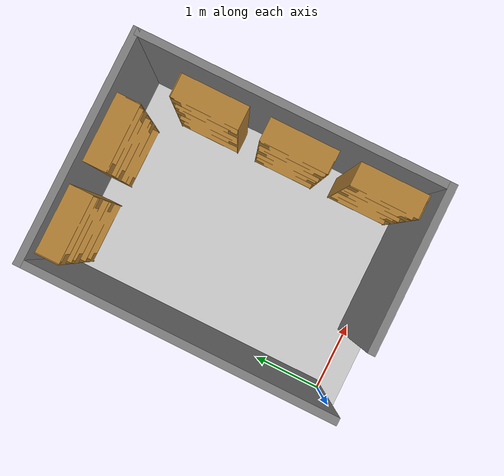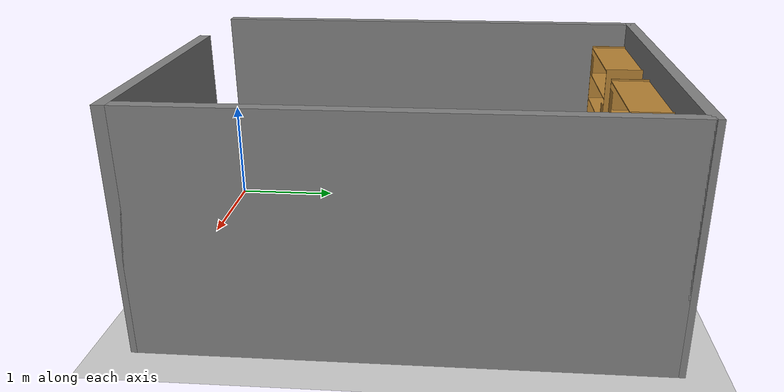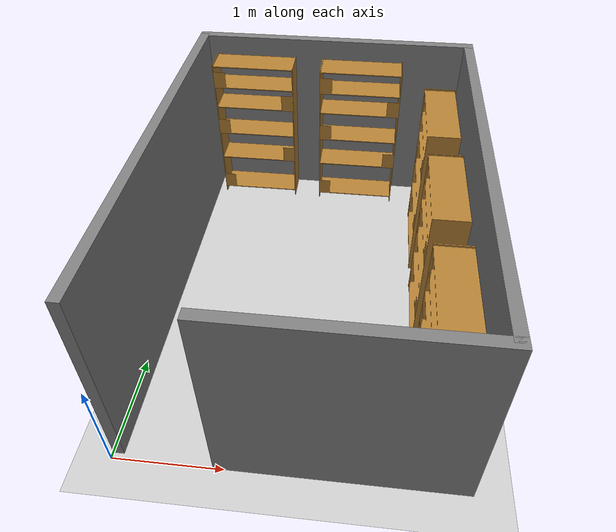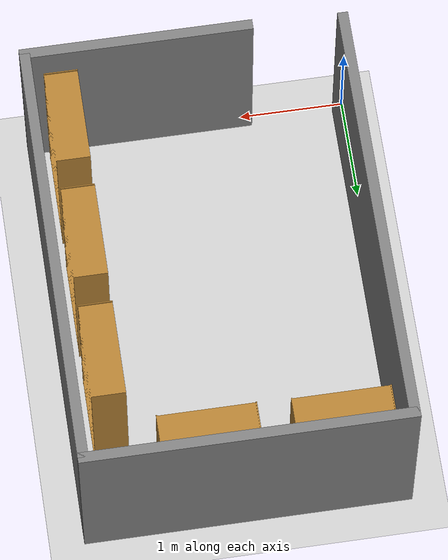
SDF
<?xml version="1.0"?>
<sdf version="1.6">
  <world name="warehouse_with_racks_and_path">

  <!-- ROS2 Gazebo plugins loaded automatically by gzserver.launch.py -->
  <!-- Do not manually add libgazebo_ros_init.so or libgazebo_ros_factory.so here -->

    <!-- Physics -->
    <physics type="ode">
      <max_step_size>0.001</max_step_size>
      <real_time_factor>1</real_time_factor>
      <real_time_update_rate>1000</real_time_update_rate>
    </physics>

    <!-- Lighting -->
    <include>
      <uri>model://sun</uri>
    </include>

    <!-- Ground Plane -->
    <include>
      <uri>model://ground_plane</uri>
    </include>
    <!-- WAREHOUSE WALLS (3.1m x 4.2m x 2m high)     -->
    <!-- Opening: 900mm starting from West wall      -->
    <!-- South Wall - RIGHT part (after opening, from 0.9m to 3.1m) -->
    <model name="wall_south_right">
      <static>true</static>
      <link name="link">
        <pose>2.0 0.05 1.0 0 0 0</pose>
        <collision name="collision">
          <geometry>
            <box>
              <size>2.2 0.1 2.0</size>
            </box>
          </geometry>
        </collision>
        <visual name="visual">
          <geometry>
            <box>
              <size>2.2 0.1 2.0</size>
            </box>
          </geometry>
          <material>
            <ambient>0.5 0.5 0.5 1</ambient>
            <diffuse>0.5 0.5 0.5 1</diffuse>
          </material>
        </visual>
      </link>
    </model>

    <!-- North Wall (3.1m length) -->
    <model name="wall_north">
      <static>true</static>
      <link name="link">
        <pose>1.55 4.15 1.0 0 0 0</pose>
        <collision name="collision">
          <geometry>
            <box>
              <size>3.1 0.1 2.0</size>
            </box>
          </geometry>
        </collision>
        <visual name="visual">
          <geometry>
            <box>
              <size>3.1 0.1 2.0</size>
            </box>
          </geometry>
          <material>
            <ambient>0.5 0.5 0.5 1</ambient>
            <diffuse>0.5 0.5 0.5 1</diffuse>
          </material>
        </visual>
      </link>
    </model>

    <!-- West Wall (4.2m length) -->
    <model name="wall_west">
      <static>true</static>
      <link name="link">
        <pose>0.05 2.1 1.0 0 0 0</pose>
        <collision name="collision">
          <geometry>
            <box>
              <size>0.1 4.1 2.0</size>
            </box>
          </geometry>
        </collision>
        <visual name="visual">
          <geometry>
            <box>
              <size>0.1 4.1 2.0</size>
            </box>
          </geometry>
          <material>
            <ambient>0.5 0.5 0.5 1</ambient>
            <diffuse>0.5 0.5 0.5 1</diffuse>
          </material>
        </visual>
      </link>
    </model>

    <!-- East Wall (4.2m length) -->
    <model name="wall_east">
      <static>true</static>
      <link name="link">
        <pose>3.05 2.1 1.0 0 0 0</pose>
        <collision name="collision">
          <geometry>
            <box>
              <size>0.1 4.1 2.0</size>
            </box>
          </geometry>
        </collision>
        <visual name="visual">
          <geometry>
            <box>
              <size>0.1 4.1 2.0</size>
            </box>
          </geometry>
          <material>
            <ambient>0.5 0.5 0.5 1</ambient>
            <diffuse>0.5 0.5 0.5 1</diffuse>
          </material>
        </visual>
      </link>
    </model>

    <!-- STORAGE RACKS - EAST WALL (3 racks)         -->
    <!-- Dimensions: 0.91m x 0.35m x 1.8m high       -->
    <!-- Placed on ground (Z = 0)                    -->
    <!-- Displaced: +0.20m North from original       -->

    <!-- Rack 1 - Original: (2.575, 2.92) + 0.20m North = (2.575, 3.12) -->
    <model name="rack_east_1">
      <static>true</static>
      <link name="link">
        <pose>2.575 3.12 0 0 0 0</pose>
        <collision name="collision">
          <geometry>
            <mesh>
              <uri>model://rack/rack.stl</uri>
              <scale>0.001 0.001 0.001</scale>
            </mesh>
          </geometry>
        </collision>
        <visual name="visual">
          <geometry>
            <mesh>
              <uri>model://rack/rack.stl</uri>
              <scale>0.001 0.001 0.001</scale>
            </mesh>
          </geometry>
          <material>
            <ambient>0.7 0.5 0.2 1</ambient>
            <diffuse>0.7 0.5 0.2 1</diffuse>
          </material>
        </visual>
      </link>
    </model>

    <!-- Rack 2 - Original: (2.575, 4.12) + 0.20m North = (2.575, 4.32) -->
    <model name="rack_east_2">
      <static>true</static>
      <link name="link">
        <pose>2.575 4.32 0 0 0 0</pose>
        <collision name="collision">
          <geometry>
            <mesh>
              <uri>model://rack/rack.stl</uri>
              <scale>0.001 0.001 0.001</scale>
            </mesh>
          </geometry>
        </collision>
        <visual name="visual">
          <geometry>
            <mesh>
              <uri>model://rack/rack.stl</uri>
              <scale>0.001 0.001 0.001</scale>
            </mesh>
          </geometry>
          <material>
            <ambient>0.7 0.5 0.2 1</ambient>
            <diffuse>0.7 0.5 0.2 1</diffuse>
          </material>
        </visual>
      </link>
    </model>

    <!-- Rack 3 - Original: (2.575, 5.32) + 0.20m North = (2.575, 5.52) -->
    <model name="rack_east_3">
      <static>true</static>
      <link name="link">
        <pose>2.575 5.52 0 0 0 0</pose>
        <collision name="collision">
          <geometry>
            <mesh>
              <uri>model://rack/rack.stl</uri>
              <scale>0.001 0.001 0.001</scale>
            </mesh>
          </geometry>
        </collision>
        <visual name="visual">
          <geometry>
            <mesh>
              <uri>model://rack/rack.stl</uri>
              <scale>0.001 0.001 0.001</scale>
            </mesh>
          </geometry>
          <material>
            <ambient>0.7 0.5 0.2 1</ambient>
            <diffuse>0.7 0.5 0.2 1</diffuse>
          </material>
        </visual>
      </link>
    </model>

    <!-- STORAGE RACKS - NORTH WALL (2 racks)        -->
    <!-- Placed on ground (Z = 0)                    -->
    <!-- Displaced: +0.20m East, -0.10m South       -->

    <!-- Rack 4 - Original: (-2.030, 3.870) + 0.20m East, -0.10m South = (-1.830, 3.770) -->
    <model name="rack_north_1">
      <static>true</static>
      <link name="link">
        <pose>-1.830 3.770 0 0 0 1.5708</pose>
        <collision name="collision">
          <geometry>
            <mesh>
              <uri>model://rack/rack.stl</uri>
              <scale>0.001 0.001 0.001</scale>
            </mesh>
          </geometry>
        </collision>
        <visual name="visual">
          <geometry>
            <mesh>
              <uri>model://rack/rack.stl</uri>
              <scale>0.001 0.001 0.001</scale>
            </mesh>
          </geometry>
          <material>
            <ambient>0.7 0.5 0.2 1</ambient>
            <diffuse>0.7 0.5 0.2 1</diffuse>
          </material>
        </visual>
      </link>
    </model>

    <!-- Rack 5 - Original: (-0.800, 3.860) + 0.20m East, -0.10m South = (-0.600, 3.760) -->
    <model name="rack_north_2">
      <static>true</static>
      <link name="link">
        <pose>-0.600 3.760 0 0 0 1.5708</pose>
        <collision name="collision">
          <geometry>
            <mesh>
              <uri>model://rack/rack.stl</uri>
              <scale>0.001 0.001 0.001</scale>
            </mesh>
          </geometry>
        </collision>
        <visual name="visual">
          <geometry>
            <mesh>
              <uri>model://rack/rack.stl</uri>
              <scale>0.001 0.001 0.001</scale>
            </mesh>
          </geometry>
          <material>
            <ambient>0.7 0.5 0.2 1</ambient>
            <diffuse>0.7 0.5 0.2 1</diffuse>
          </material>
        </visual>
      </link>
    </model>
  </world>
</sdf>
